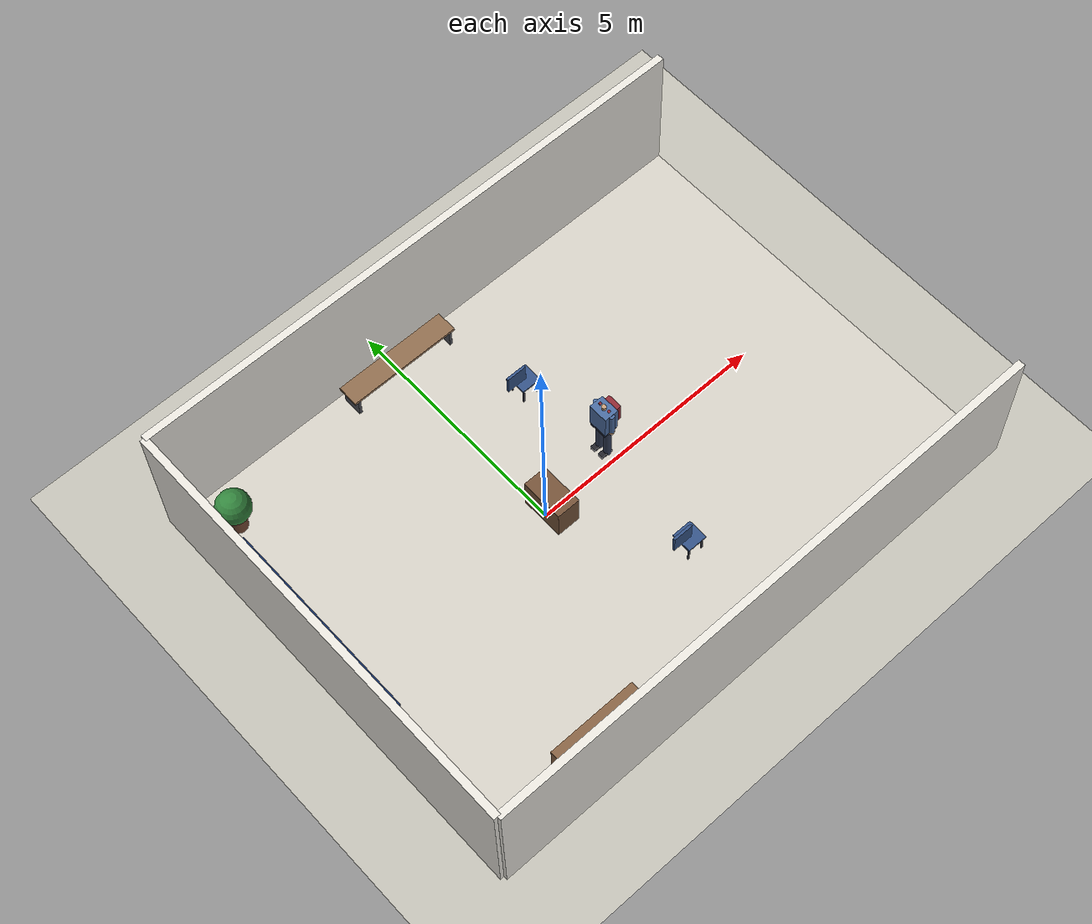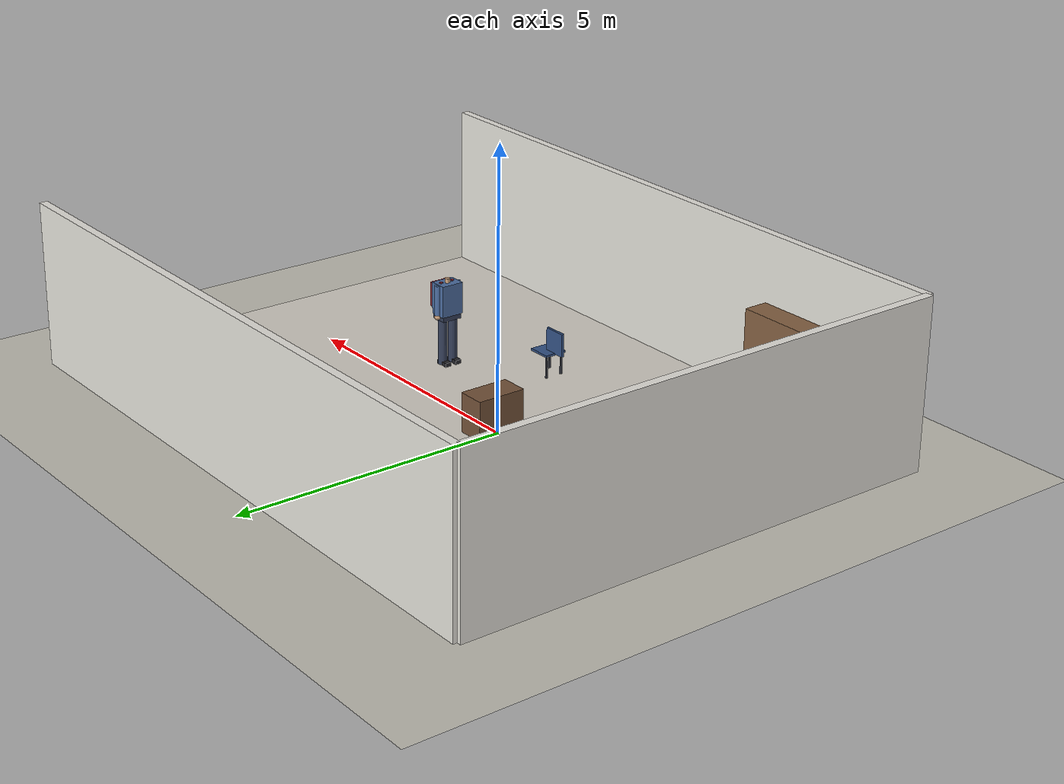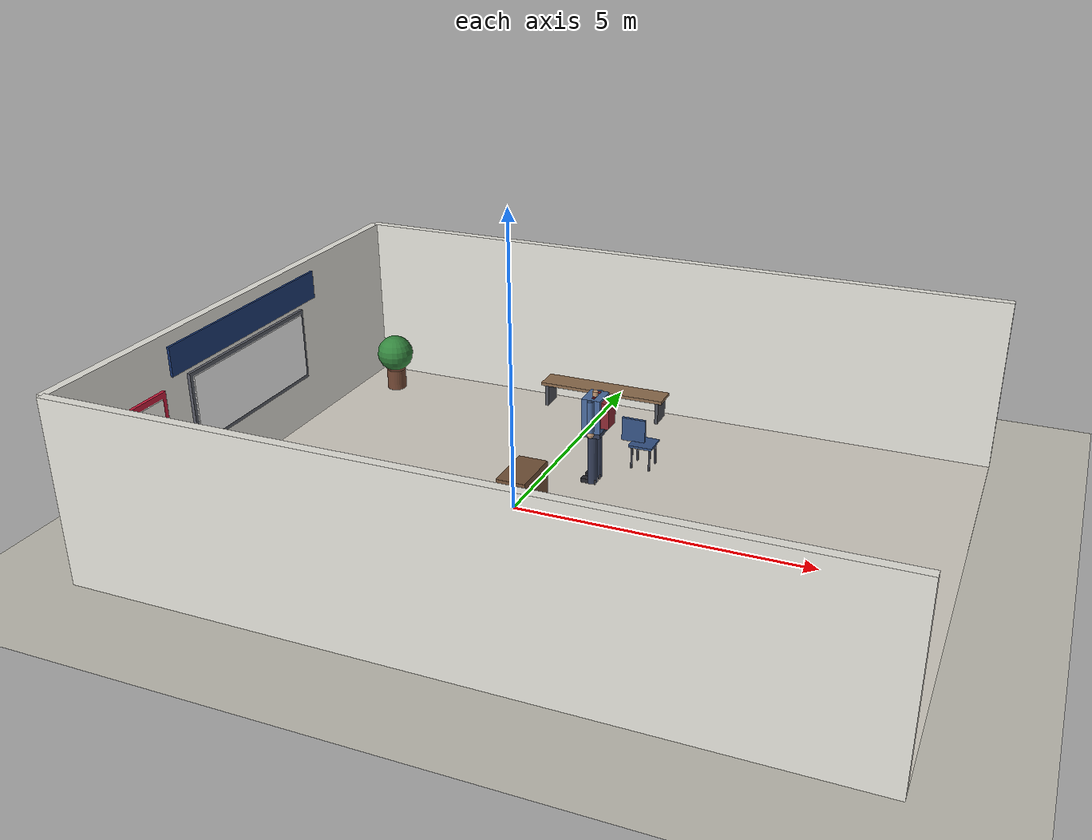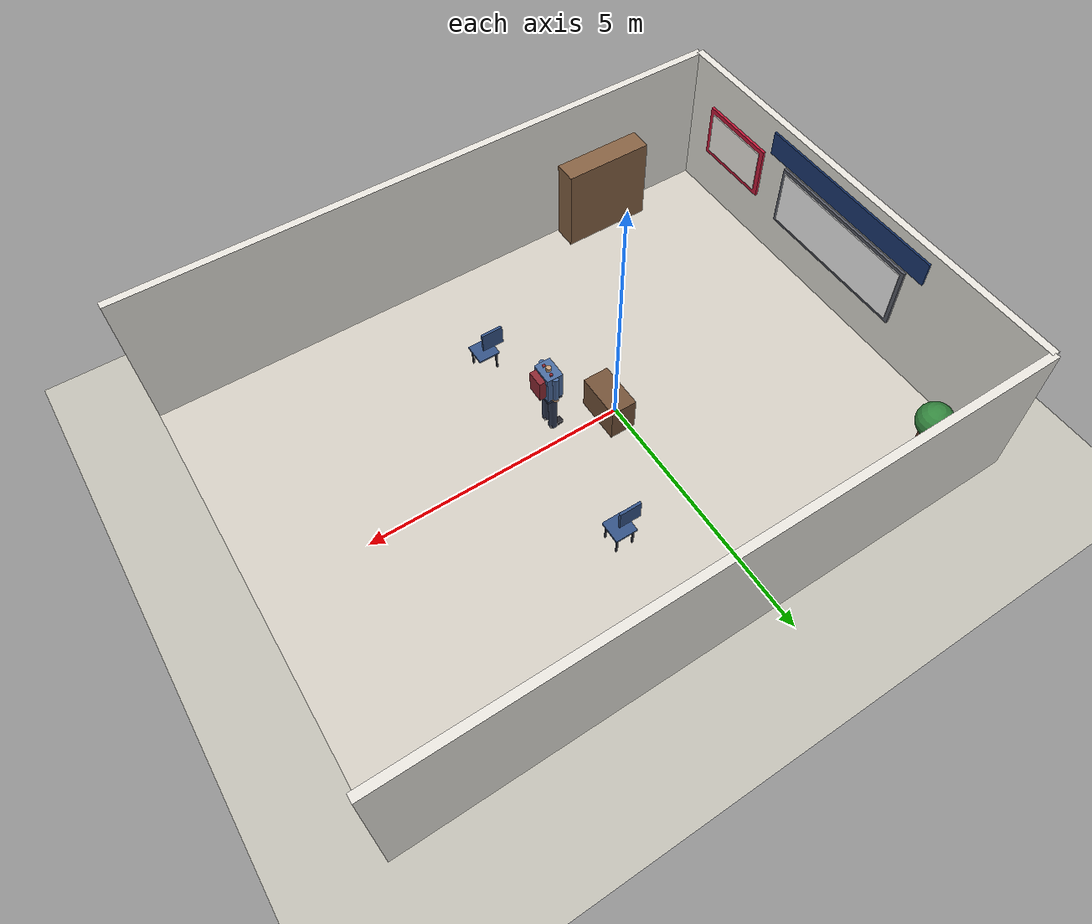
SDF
<sdf version="1.8">
 <world name="drona_advising">
  <model name="ground_plane">
   <static>true</static>
   <link name="link">
    <collision name="collision">
     <geometry><plane><normal>0 0 1</normal><size>20 20</size></plane></geometry>
    </collision>
    <visual name="visual">
     <geometry><plane><normal>0 0 1</normal><size>20 20</size></plane></geometry>
     <material><ambient>0.75 0.74 0.7 1</ambient><diffuse>0.75 0.74 0.7 1</diffuse></material>
    </visual>
   </link>
  </model>
  <model name="advising_desk">
   <static>true</static>
   <pose>0.15 0 0.36 0 0 0</pose>
   <link name="top">
    <collision name="collision"><geometry><box><size>0.5 0.9 0.72</size></box></geometry></collision>
    <visual name="visual">
     <geometry><box><size>0.5 0.9 0.72</size></box></geometry>
     <material><ambient>0.45 0.32 0.22 1</ambient><diffuse>0.45 0.32 0.22 1</diffuse></material>
    </visual>
   </link>
  </model>
  <model name="student_figure">
   <static>true</static>
   <pose>1.4 0 0 0 0 3.14159</pose>
   <link name="body">
    <pose>0 0 0.8 0 0 0</pose>
    <collision name="collision">
     <geometry><cylinder><radius>0.16</radius><length>1.6</length></cylinder></geometry>
    </collision>
    <visual name="torso">
     <pose>0 0 1.16 0 0 0</pose>
     <geometry><box><size>0.30 0.40 0.55</size></box></geometry>
     <material><ambient>0.29 0.42 0.62 1</ambient><diffuse>0.29 0.42 0.62 1</diffuse></material>
    </visual>
    <visual name="hips">
     <pose>0 0 0.86 0 0 0</pose>
     <geometry><box><size>0.28 0.36 0.12</size></box></geometry>
     <material><ambient>0.2 0.24 0.34 1</ambient><diffuse>0.2 0.24 0.34 1</diffuse></material>
    </visual>
    <visual name="leg_l">
     <pose>0 0.10 0.43 0 0 0</pose>
     <geometry><cylinder><radius>0.075</radius><length>0.86</length></cylinder></geometry>
     <material><ambient>0.2 0.24 0.34 1</ambient><diffuse>0.2 0.24 0.34 1</diffuse></material>
    </visual>
    <visual name="shoe_l">
     <pose>0.05 0.10 0.03 0 0 0</pose>
     <geometry><box><size>0.24 0.11 0.07</size></box></geometry>
     <material><ambient>0.14 0.14 0.16 1</ambient><diffuse>0.14 0.14 0.16 1</diffuse></material>
    </visual>
    <visual name="arm_l">
     <pose>0 0.20 1.16 0 0 0</pose>
     <geometry><cylinder><radius>0.055</radius><length>0.52</length></cylinder></geometry>
     <material><ambient>0.29 0.42 0.62 1</ambient><diffuse>0.29 0.42 0.62 1</diffuse></material>
    </visual>
    <visual name="hand_l">
     <pose>0 0.20 0.86 0 0 0</pose>
     <geometry><sphere><radius>0.055</radius></sphere></geometry>
     <material><ambient>0.78 0.62 0.48 1</ambient><diffuse>0.78 0.62 0.48 1</diffuse></material>
    </visual>
    <visual name="leg_r">
     <pose>0 -0.10 0.43 0 0 0</pose>
     <geometry><cylinder><radius>0.075</radius><length>0.86</length></cylinder></geometry>
     <material><ambient>0.2 0.24 0.34 1</ambient><diffuse>0.2 0.24 0.34 1</diffuse></material>
    </visual>
    <visual name="shoe_r">
     <pose>0.05 -0.10 0.03 0 0 0</pose>
     <geometry><box><size>0.24 0.11 0.07</size></box></geometry>
     <material><ambient>0.14 0.14 0.16 1</ambient><diffuse>0.14 0.14 0.16 1</diffuse></material>
    </visual>
    <visual name="arm_r">
     <pose>0 -0.20 1.16 0 0 0</pose>
     <geometry><cylinder><radius>0.055</radius><length>0.52</length></cylinder></geometry>
     <material><ambient>0.29 0.42 0.62 1</ambient><diffuse>0.29 0.42 0.62 1</diffuse></material>
    </visual>
    <visual name="hand_r">
     <pose>0 -0.20 0.86 0 0 0</pose>
     <geometry><sphere><radius>0.055</radius></sphere></geometry>
     <material><ambient>0.78 0.62 0.48 1</ambient><diffuse>0.78 0.62 0.48 1</diffuse></material>
    </visual>
    <visual name="neck">
     <pose>0 0 1.47 0 0 0</pose>
     <geometry><cylinder><radius>0.045</radius><length>0.07</length></cylinder></geometry>
     <material><ambient>0.78 0.62 0.48 1</ambient><diffuse>0.78 0.62 0.48 1</diffuse></material>
    </visual>
    <visual name="backpack">
     <pose>-0.20 0 1.18 0 0 0</pose>
     <geometry><box><size>0.14 0.30 0.42</size></box></geometry>
     <material><ambient>0.55 0.16 0.2 1</ambient><diffuse>0.55 0.16 0.2 1</diffuse></material>
    </visual>
    <visual name="backpack_strap_l">
     <pose>-0.02 0.11 1.28 0 0 0</pose>
     <geometry><box><size>0.05 0.05 0.34</size></box></geometry>
     <material><ambient>0.55 0.16 0.2 1</ambient><diffuse>0.55 0.16 0.2 1</diffuse></material>
    </visual>
    <visual name="backpack_strap_r">
     <pose>-0.02 -0.11 1.28 0 0 0</pose>
     <geometry><box><size>0.05 0.05 0.34</size></box></geometry>
     <material><ambient>0.55 0.16 0.2 1</ambient><diffuse>0.55 0.16 0.2 1</diffuse></material>
    </visual>
   </link>
   <link name="head">
    <pose>0 0 1.7 0 0 0</pose>
    <collision name="collision"><geometry><sphere><radius>0.1</radius></sphere></geometry></collision>
    <visual name="skull">
     <geometry><sphere><radius>0.105</radius></sphere></geometry>
     <material><ambient>0.78 0.62 0.48 1</ambient><diffuse>0.78 0.62 0.48 1</diffuse></material>
    </visual>
    <visual name="hair">
     <pose>-0.018 0 0.022 0 0 0</pose>
     <geometry><sphere><radius>0.108</radius></sphere></geometry>
     <material><ambient>0.08 0.06 0.06 1</ambient><diffuse>0.08 0.06 0.06 1</diffuse></material>
    </visual>
    <visual name="fringe">
     <pose>0.052 0 0.062 0 0 0</pose>
     <geometry><box><size>0.09 0.19 0.055</size></box></geometry>
     <material><ambient>0.08 0.06 0.06 1</ambient><diffuse>0.08 0.06 0.06 1</diffuse></material>
    </visual>
   </link>
   <joint name="neck" type="fixed"><parent>body</parent><child>head</child></joint>
  </model>
  <model name="room_floor">
   <static>true</static>
   <pose>1 0 0.005 0 0 0</pose>
   <link name="link">
    <collision name="collision"><geometry><box><size>12 9 0.01</size></box></geometry></collision>
    <visual name="visual">
     <geometry><box><size>12 9 0.01</size></box></geometry>
     <material>
      <ambient>0.82 0.8 0.76 1</ambient>
      <diffuse>0.82 0.8 0.76 1</diffuse>
      <specular>0.1 0.1 0.1 1</specular>
     </material>
    </visual>
   </link>
  </model>
  <model name="wall_back">
   <static>true</static>
   <pose>-5 0 1.5 0 0 0</pose>
   <link name="link">
    <collision name="collision"><geometry><box><size>0.15 9 3</size></box></geometry></collision>
    <visual name="visual">
     <geometry><box><size>0.15 9 3</size></box></geometry>
     <material>
      <ambient>0.9 0.89 0.86 1</ambient>
      <diffuse>0.9 0.89 0.86 1</diffuse>
      <specular>0.1 0.1 0.1 1</specular>
     </material>
    </visual>
   </link>
  </model>
  <model name="wall_left">
   <static>true</static>
   <pose>1 4.5 1.5 0 0 0</pose>
   <link name="link">
    <collision name="collision"><geometry><box><size>12 0.15 3</size></box></geometry></collision>
    <visual name="visual">
     <geometry><box><size>12 0.15 3</size></box></geometry>
     <material>
      <ambient>0.9 0.89 0.86 1</ambient>
      <diffuse>0.9 0.89 0.86 1</diffuse>
      <specular>0.1 0.1 0.1 1</specular>
     </material>
    </visual>
   </link>
  </model>
  <model name="wall_right">
   <static>true</static>
   <pose>1 -4.5 1.5 0 0 0</pose>
   <link name="link">
    <collision name="collision"><geometry><box><size>12 0.15 3</size></box></geometry></collision>
    <visual name="visual">
     <geometry><box><size>12 0.15 3</size></box></geometry>
     <material>
      <ambient>0.9 0.89 0.86 1</ambient>
      <diffuse>0.9 0.89 0.86 1</diffuse>
      <specular>0.1 0.1 0.1 1</specular>
     </material>
    </visual>
   </link>
  </model>
  <model name="whiteboard_frame">
   <static>true</static>
   <pose>-4.90 0 1.55 0 0 0</pose>
   <link name="link">
    <collision name="collision"><geometry><box><size>0.06 3.2 1.3</size></box></geometry></collision>
    <visual name="visual">
     <geometry><box><size>0.06 3.2 1.3</size></box></geometry>
     <material>
      <ambient>0.35 0.36 0.4 1</ambient>
      <diffuse>0.35 0.36 0.4 1</diffuse>
      <specular>0.1 0.1 0.1 1</specular>
     </material>
    </visual>
   </link>
  </model>
  <model name="whiteboard">
   <static>true</static>
   <pose>-4.86 0 1.55 0 0 0</pose>
   <link name="link">
    <collision name="collision"><geometry><box><size>0.02 3.05 1.15</size></box></geometry></collision>
    <visual name="visual">
     <geometry><box><size>0.02 3.05 1.15</size></box></geometry>
     <material>
      <ambient>0.97 0.97 0.97 1</ambient>
      <diffuse>0.97 0.97 0.97 1</diffuse>
      <specular>0.1 0.1 0.1 1</specular>
     </material>
    </visual>
   </link>
  </model>
  <model name="notice_board">
   <static>true</static>
   <pose>-4.90 -3.0 1.6 0 0 0</pose>
   <link name="link">
    <collision name="collision"><geometry><box><size>0.06 1.6 1.1</size></box></geometry></collision>
    <visual name="visual">
     <geometry><box><size>0.06 1.6 1.1</size></box></geometry>
     <material>
      <ambient>0.78 0.1 0.23 1</ambient>
      <diffuse>0.78 0.1 0.23 1</diffuse>
      <specular>0.1 0.1 0.1 1</specular>
     </material>
    </visual>
   </link>
  </model>
  <model name="notice_paper">
   <static>true</static>
   <pose>-4.86 -3.0 1.6 0 0 0</pose>
   <link name="link">
    <collision name="collision"><geometry><box><size>0.02 1.4 0.9</size></box></geometry></collision>
    <visual name="visual">
     <geometry><box><size>0.02 1.4 0.9</size></box></geometry>
     <material>
      <ambient>0.96 0.95 0.92 1</ambient>
      <diffuse>0.96 0.95 0.92 1</diffuse>
      <specular>0.1 0.1 0.1 1</specular>
     </material>
    </visual>
   </link>
  </model>
  <model name="college_banner">
   <static>true</static>
   <pose>-4.88 0 2.55 0 0 0</pose>
   <link name="link">
    <collision name="collision"><geometry><box><size>0.04 4.0 0.5</size></box></geometry></collision>
    <visual name="visual">
     <geometry><box><size>0.04 4.0 0.5</size></box></geometry>
     <material>
      <ambient>0.1 0.22 0.45 1</ambient>
      <diffuse>0.1 0.22 0.45 1</diffuse>
      <specular>0.1 0.1 0.1 1</specular>
     </material>
    </visual>
   </link>
  </model>
  <model name="student_chair_0">
   <static>true</static>
   <pose>1.45 2.2 0.44 0 0 1.5708</pose>
   <link name="link">
    <collision name="collision"><geometry><box><size>0.42 0.42 0.04</size></box></geometry></collision>
    <visual name="visual">
     <geometry><box><size>0.42 0.42 0.04</size></box></geometry>
     <material>
      <ambient>0.2 0.32 0.52 1</ambient>
      <diffuse>0.2 0.32 0.52 1</diffuse>
      <specular>0.1 0.1 0.1 1</specular>
     </material>
    </visual>
   </link>
  </model>
  <model name="student_chair_0_back">
   <static>true</static>
   <pose>1.26 2.2 0.66 0 0 1.5708</pose>
   <link name="link">
    <collision name="collision"><geometry><box><size>0.05 0.42 0.42</size></box></geometry></collision>
    <visual name="visual">
     <geometry><box><size>0.05 0.42 0.42</size></box></geometry>
     <material>
      <ambient>0.2 0.32 0.52 1</ambient>
      <diffuse>0.2 0.32 0.52 1</diffuse>
      <specular>0.1 0.1 0.1 1</specular>
     </material>
    </visual>
   </link>
  </model>
  <model name="student_chair_0_leg0">
   <static>true</static>
   <pose>1.29 2.04 0.21 0 0 1.5708</pose>
   <link name="link">
    <collision name="collision"><geometry><box><size>0.03 0.03 0.42</size></box></geometry></collision>
    <visual name="visual">
     <geometry><box><size>0.03 0.03 0.42</size></box></geometry>
     <material>
      <ambient>0.25 0.26 0.3 1</ambient>
      <diffuse>0.25 0.26 0.3 1</diffuse>
      <specular>0.1 0.1 0.1 1</specular>
     </material>
    </visual>
   </link>
  </model>
  <model name="student_chair_0_leg1">
   <static>true</static>
   <pose>1.6099999999999999 2.04 0.21 0 0 1.5708</pose>
   <link name="link">
    <collision name="collision"><geometry><box><size>0.03 0.03 0.42</size></box></geometry></collision>
    <visual name="visual">
     <geometry><box><size>0.03 0.03 0.42</size></box></geometry>
     <material>
      <ambient>0.25 0.26 0.3 1</ambient>
      <diffuse>0.25 0.26 0.3 1</diffuse>
      <specular>0.1 0.1 0.1 1</specular>
     </material>
    </visual>
   </link>
  </model>
  <model name="student_chair_0_leg2">
   <static>true</static>
   <pose>1.29 2.3600000000000003 0.21 0 0 1.5708</pose>
   <link name="link">
    <collision name="collision"><geometry><box><size>0.03 0.03 0.42</size></box></geometry></collision>
    <visual name="visual">
     <geometry><box><size>0.03 0.03 0.42</size></box></geometry>
     <material>
      <ambient>0.25 0.26 0.3 1</ambient>
      <diffuse>0.25 0.26 0.3 1</diffuse>
      <specular>0.1 0.1 0.1 1</specular>
     </material>
    </visual>
   </link>
  </model>
  <model name="student_chair_0_leg3">
   <static>true</static>
   <pose>1.6099999999999999 2.3600000000000003 0.21 0 0 1.5708</pose>
   <link name="link">
    <collision name="collision"><geometry><box><size>0.03 0.03 0.42</size></box></geometry></collision>
    <visual name="visual">
     <geometry><box><size>0.03 0.03 0.42</size></box></geometry>
     <material>
      <ambient>0.25 0.26 0.3 1</ambient>
      <diffuse>0.25 0.26 0.3 1</diffuse>
      <specular>0.1 0.1 0.1 1</specular>
     </material>
    </visual>
   </link>
  </model>
  <model name="student_chair_1">
   <static>true</static>
   <pose>1.45 -2.2 0.44 0 0 1.5708</pose>
   <link name="link">
    <collision name="collision"><geometry><box><size>0.42 0.42 0.04</size></box></geometry></collision>
    <visual name="visual">
     <geometry><box><size>0.42 0.42 0.04</size></box></geometry>
     <material>
      <ambient>0.2 0.32 0.52 1</ambient>
      <diffuse>0.2 0.32 0.52 1</diffuse>
      <specular>0.1 0.1 0.1 1</specular>
     </material>
    </visual>
   </link>
  </model>
  <model name="student_chair_1_back">
   <static>true</static>
   <pose>1.26 -2.2 0.66 0 0 1.5708</pose>
   <link name="link">
    <collision name="collision"><geometry><box><size>0.05 0.42 0.42</size></box></geometry></collision>
    <visual name="visual">
     <geometry><box><size>0.05 0.42 0.42</size></box></geometry>
     <material>
      <ambient>0.2 0.32 0.52 1</ambient>
      <diffuse>0.2 0.32 0.52 1</diffuse>
      <specular>0.1 0.1 0.1 1</specular>
     </material>
    </visual>
   </link>
  </model>
  <model name="student_chair_1_leg0">
   <static>true</static>
   <pose>1.29 -2.3600000000000003 0.21 0 0 1.5708</pose>
   <link name="link">
    <collision name="collision"><geometry><box><size>0.03 0.03 0.42</size></box></geometry></collision>
    <visual name="visual">
     <geometry><box><size>0.03 0.03 0.42</size></box></geometry>
     <material>
      <ambient>0.25 0.26 0.3 1</ambient>
      <diffuse>0.25 0.26 0.3 1</diffuse>
      <specular>0.1 0.1 0.1 1</specular>
     </material>
    </visual>
   </link>
  </model>
  <model name="student_chair_1_leg1">
   <static>true</static>
   <pose>1.6099999999999999 -2.3600000000000003 0.21 0 0 1.5708</pose>
   <link name="link">
    <collision name="collision"><geometry><box><size>0.03 0.03 0.42</size></box></geometry></collision>
    <visual name="visual">
     <geometry><box><size>0.03 0.03 0.42</size></box></geometry>
     <material>
      <ambient>0.25 0.26 0.3 1</ambient>
      <diffuse>0.25 0.26 0.3 1</diffuse>
      <specular>0.1 0.1 0.1 1</specular>
     </material>
    </visual>
   </link>
  </model>
  <model name="student_chair_1_leg2">
   <static>true</static>
   <pose>1.29 -2.04 0.21 0 0 1.5708</pose>
   <link name="link">
    <collision name="collision"><geometry><box><size>0.03 0.03 0.42</size></box></geometry></collision>
    <visual name="visual">
     <geometry><box><size>0.03 0.03 0.42</size></box></geometry>
     <material>
      <ambient>0.25 0.26 0.3 1</ambient>
      <diffuse>0.25 0.26 0.3 1</diffuse>
      <specular>0.1 0.1 0.1 1</specular>
     </material>
    </visual>
   </link>
  </model>
  <model name="bench_seat">
   <static>true</static>
   <pose>0 4.1 0.45 0 0 0</pose>
   <link name="link">
    <collision name="collision"><geometry><box><size>2.4 0.45 0.06</size></box></geometry></collision>
    <visual name="visual">
     <geometry><box><size>2.4 0.45 0.06</size></box></geometry>
     <material>
      <ambient>0.55 0.42 0.3 1</ambient>
      <diffuse>0.55 0.42 0.3 1</diffuse>
      <specular>0.1 0.1 0.1 1</specular>
     </material>
    </visual>
   </link>
  </model>
  <model name="bench_leg_l">
   <static>true</static>
   <pose>-1.1 4.1 0.22 0 0 0</pose>
   <link name="link">
    <collision name="collision"><geometry><box><size>0.06 0.42 0.44</size></box></geometry></collision>
    <visual name="visual">
     <geometry><box><size>0.06 0.42 0.44</size></box></geometry>
     <material>
      <ambient>0.3 0.31 0.34 1</ambient>
      <diffuse>0.3 0.31 0.34 1</diffuse>
      <specular>0.1 0.1 0.1 1</specular>
     </material>
    </visual>
   </link>
  </model>
  <model name="bench_leg_r">
   <static>true</static>
   <pose>1.1 4.1 0.22 0 0 0</pose>
   <link name="link">
    <collision name="collision"><geometry><box><size>0.06 0.42 0.44</size></box></geometry></collision>
    <visual name="visual">
     <geometry><box><size>0.06 0.42 0.44</size></box></geometry>
     <material>
      <ambient>0.3 0.31 0.34 1</ambient>
      <diffuse>0.3 0.31 0.34 1</diffuse>
      <specular>0.1 0.1 0.1 1</specular>
     </material>
    </visual>
   </link>
  </model>
  <model name="bookshelf">
   <static>true</static>
   <pose>-2.5 -4.15 0.9 0 0 0</pose>
   <link name="link">
    <collision name="collision"><geometry><box><size>1.8 0.45 1.8</size></box></geometry></collision>
    <visual name="visual">
     <geometry><box><size>1.8 0.45 1.8</size></box></geometry>
     <material>
      <ambient>0.52 0.38 0.26 1</ambient>
      <diffuse>0.52 0.38 0.26 1</diffuse>
      <specular>0.1 0.1 0.1 1</specular>
     </material>
    </visual>
   </link>
  </model>
  <model name="books_0">
   <static>true</static>
   <pose>-2.5 -4.10 0.45 0 0 0</pose>
   <link name="link">
    <collision name="collision"><geometry><box><size>1.6 0.30 0.26</size></box></geometry></collision>
    <visual name="visual">
     <geometry><box><size>1.6 0.30 0.26</size></box></geometry>
     <material>
      <ambient>0.3 0.45 0.55 1</ambient>
      <diffuse>0.3 0.45 0.55 1</diffuse>
      <specular>0.1 0.1 0.1 1</specular>
     </material>
    </visual>
   </link>
  </model>
  <model name="books_1">
   <static>true</static>
   <pose>-2.5 -4.10 0.95 0 0 0</pose>
   <link name="link">
    <collision name="collision"><geometry><box><size>1.6 0.30 0.26</size></box></geometry></collision>
    <visual name="visual">
     <geometry><box><size>1.6 0.30 0.26</size></box></geometry>
     <material>
      <ambient>0.3 0.45 0.55 1</ambient>
      <diffuse>0.3 0.45 0.55 1</diffuse>
      <specular>0.1 0.1 0.1 1</specular>
     </material>
    </visual>
   </link>
  </model>
  <model name="books_2">
   <static>true</static>
   <pose>-2.5 -4.10 1.45 0 0 0</pose>
   <link name="link">
    <collision name="collision"><geometry><box><size>1.6 0.30 0.26</size></box></geometry></collision>
    <visual name="visual">
     <geometry><box><size>1.6 0.30 0.26</size></box></geometry>
     <material>
      <ambient>0.3 0.45 0.55 1</ambient>
      <diffuse>0.3 0.45 0.55 1</diffuse>
      <specular>0.1 0.1 0.1 1</specular>
     </material>
    </visual>
   </link>
  </model>
  <model name="plant_1">
   <static>true</static>
   <pose>-4.2 3.6 0 0 0 0</pose>
   <link name="link">
    <collision name="collision">
     <pose>0 0 0.2 0 0 0</pose>
     <geometry><cylinder><radius>0.18</radius><length>0.4</length></cylinder></geometry>
    </collision>
    <visual name="pot">
     <pose>0 0 0.2 0 0 0</pose>
     <geometry><cylinder><radius>0.18</radius><length>0.4</length></cylinder></geometry>
     <material><ambient>0.45 0.28 0.20 1</ambient><diffuse>0.45 0.28 0.20 1</diffuse></material>
    </visual>
    <visual name="foliage">
     <pose>0 0 0.72 0 0 0</pose>
     <geometry><sphere><radius>0.34</radius></sphere></geometry>
     <material><ambient>0.16 0.42 0.20 1</ambient><diffuse>0.20 0.52 0.24 1</diffuse></material>
    </visual>
   </link>
  </model>
 </world>
</sdf>
